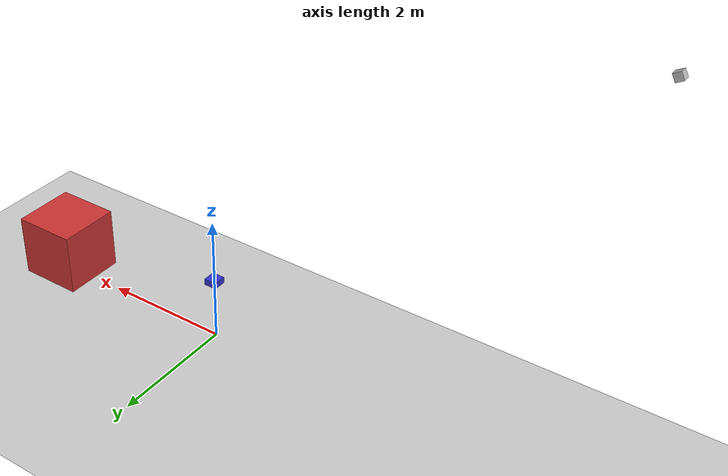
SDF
<?xml version="1.0" ?>
<sdf version="1.10">
  <world name="camera_info_frustum_visualization">

    <plugin
      filename="gz-sim-scene-broadcaster-system"
      name="gz::sim::systems::SceneBroadcaster" />

    <plugin
      filename="gz-sim-user-commands-system"
      name="gz::sim::systems::UserCommands" />

    <plugin
      filename="gz-sim-sensors-system"
      name="gz::sim::systems::Sensors">
      <render_engine>ogre2</render_engine>
    </plugin>

    <plugin
      filename="gz-sim-logical-camera-system"
      name="gz::sim::systems::LogicalCamera">
      <render_engine>ogre2</render_engine>
    </plugin>

    <light type="directional" name="sun">
      <cast_shadows>true</cast_shadows>
      <pose>0 0 10 0 0 0</pose>
      <diffuse>0.8 0.8 0.8 1</diffuse>
      <specular>0.2 0.2 0.2 1</specular>
      <attenuation>
        <range>1000</range>
        <constant>0.9</constant>
        <linear>0.01</linear>
        <quadratic>0.001</quadratic>
      </attenuation>
      <direction>-0.3 0.1 -0.9</direction>
    </light>

    <model name="ground_plane">
      <static>true</static>
      <link name="link">
        <collision name="collision">
          <geometry>
            <plane>
              <normal>0 0 1</normal>
              <size>20 20</size>
            </plane>
          </geometry>
        </collision>
        <visual name="visual">
          <geometry>
            <plane>
              <normal>0 0 1</normal>
              <size>20 20</size>
            </plane>
          </geometry>
          <material>
            <ambient>0.8 0.8 0.8 1</ambient>
            <diffuse>0.8 0.8 0.8 1</diffuse>
          </material>
        </visual>
      </link>
    </model>

    <model name="target_box">
      <static>true</static>
      <pose>3 0 0.5 0 0 0</pose>
      <link name="link">
        <collision name="collision">
          <geometry>
            <box>
              <size>1 1 1</size>
            </box>
          </geometry>
        </collision>
        <visual name="visual">
          <geometry>
            <box>
              <size>1 1 1</size>
            </box>
          </geometry>
          <material>
            <ambient>0.8 0.2 0.2 1</ambient>
            <diffuse>0.8 0.2 0.2 1</diffuse>
          </material>
        </visual>
      </link>
    </model>

    <model name="camera_rig">
      <static>true</static>
      <pose>0 0 1 0 0 0</pose>

      <link name="camera_link">
        <visual name="camera_body">
          <pose>0 0 0 0 0 0</pose>
          <geometry>
            <box>
              <size>0.2 0.2 0.1</size>
            </box>
          </geometry>
          <material>
            <ambient>0.2 0.2 0.8 1</ambient>
            <diffuse>0.2 0.2 0.8 1</diffuse>
          </material>
        </visual>

        <sensor name="rgb_camera" type="camera">
          <pose>0 0 0 0 0 0</pose>
          <always_on>true</always_on>
          <update_rate>30</update_rate>
          <topic>/rgb_camera</topic>

          <camera>
            <horizontal_fov>1.0471975512</horizontal_fov>
            <image>
              <width>640</width>
              <height>480</height>
              <format>R8G8B8</format>
            </image>
            <clip>
              <near>0.1</near>
              <far>10.0</far>
            </clip>
          </camera>
        </sensor>
      </link>
    </model>

    <model name="logical_camera">
      <static>true</static>
      <pose>-6 0 6 0 0.5 0</pose>
      <link name="logical_camera_link">
	<pose>0.05 0.05 0.05 0 0 0</pose>
        <collision name="collision">
          <geometry>
            <box>
              <size>0.1 0.1 0.1</size>
            </box>
          </geometry>
        </collision>
        <visual name="visual">
          <geometry>
            <box>
              <size>0.1 0.1 0.1</size>
            </box>
          </geometry>
        </visual>
        <sensor name='logical_camera' type='logical_camera'>
          <update_rate>10</update_rate>
          <logical_camera>
            <near>0.55</near>
            <far>5</far>
            <horizontal_fov>1.04719755</horizontal_fov>
            <aspect_ratio>1.778</aspect_ratio>
          </logical_camera>
          <topic>logical_camera</topic>
          <enable_metrics>true</enable_metrics>
        </sensor>
      </link>
   </model>

    <gui fullscreen="0">
      <plugin
        filename="VisualizeFrustum"
        name="Visualize Frustum"/>
    </gui>

  </world>
</sdf>
